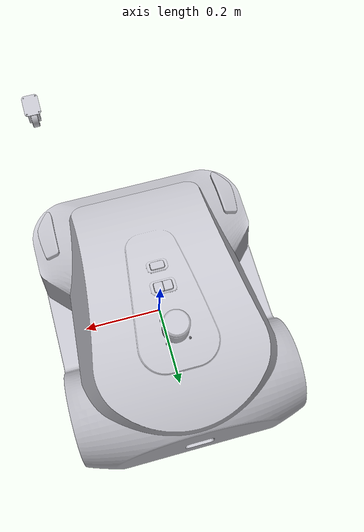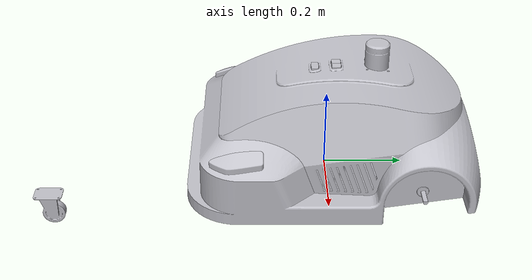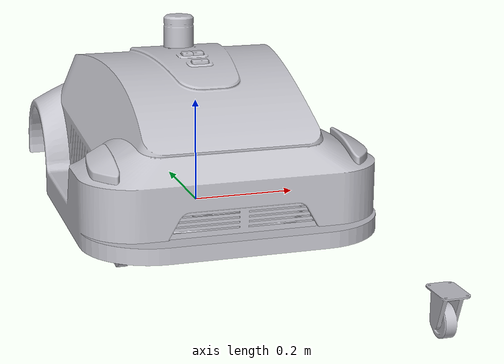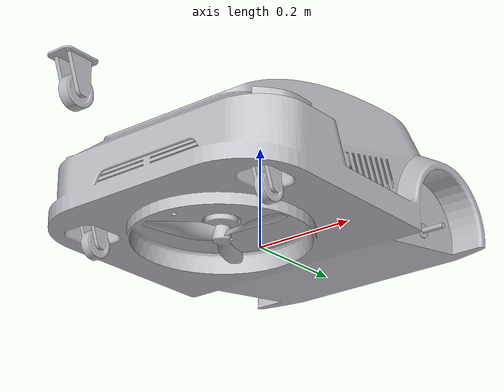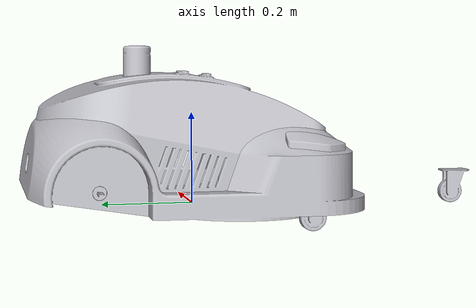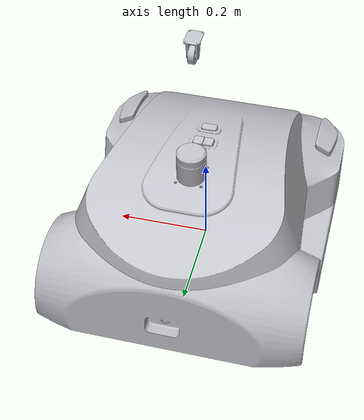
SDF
<sdf version='1.11'>
  <model name='Robotic'>
    <link name='base_link'>
      <inertial>
        <pose>5.2471218640196891e-06 0.02269667821484404 0.081583929946302952 0 0 0</pose>
        <mass>77.101537997187293</mass>
        <inertia>
          <ixx>3.551893067888106</ixx>
          <ixy>6.7883650591503441e-05</ixy>
          <ixz>-2.7827330177558539e-05</ixz>
          <iyy>1.948607803008116</iyy>
          <iyz>-0.16240465821616021</iyz>
          <izz>4.3501037351001948</izz>
        </inertia>
      </inertial>
      <collision name='base_link_collision'>
        <pose>0 0 0 0 0 0</pose>
        <geometry>
          <mesh>
            <scale>0.001 0.001 0.001</scale>
            <uri>file:///home/hafiz/ros2_ws/install/lawnmover/share/lawnmover/meshes/base_link.stl</uri>
          </mesh>
        </geometry>
        <surface>
          <contact>
            <ode/>
          </contact>
          <friction>
            <ode>
              <mu>0.20000000000000001</mu>
              <mu2>0.20000000000000001</mu2>
            </ode>
          </friction>
        </surface>
      </collision>
      <collision name='base_link_fixed_joint_lump__top_body_1_collision_1'>
        <pose>0 0 0 0 0 0</pose>
        <geometry>
          <mesh>
            <scale>0.001 0.001 0.001</scale>
            <uri>file:///home/hafiz/ros2_ws/install/lawnmover/share/lawnmover/meshes/top_body_1.stl</uri>
          </mesh>
        </geometry>
        <surface>
          <contact>
            <ode/>
          </contact>
          <friction>
            <ode>
              <mu>0.20000000000000001</mu>
              <mu2>0.20000000000000001</mu2>
            </ode>
          </friction>
        </surface>
      </collision>
      <collision name='base_link_fixed_joint_lump__LiDAR_1_collision_2'>
        <pose>0 -5.5511151231257827e-17 0 0 0 0</pose>
        <geometry>
          <mesh>
            <scale>0.001 0.001 0.001</scale>
            <uri>file:///home/hafiz/ros2_ws/install/lawnmover/share/lawnmover/meshes/LiDAR_1.stl</uri>
          </mesh>
        </geometry>
        <surface>
          <contact>
            <ode/>
          </contact>
          <friction>
            <ode>
              <mu>0.20000000000000001</mu>
              <mu2>0.20000000000000001</mu2>
            </ode>
          </friction>
        </surface>
      </collision>
      <collision name='base_link_fixed_joint_lump__electronic_board_cover_1_collision_3'>
        <pose>0 0 0 0 0 0</pose>
        <geometry>
          <mesh>
            <scale>0.001 0.001 0.001</scale>
            <uri>file:///home/hafiz/ros2_ws/install/lawnmover/share/lawnmover/meshes/electronic_board_cover_1.stl</uri>
          </mesh>
        </geometry>
        <surface>
          <contact>
            <ode/>
          </contact>
          <friction>
            <ode>
              <mu>0.20000000000000001</mu>
              <mu2>0.20000000000000001</mu2>
            </ode>
          </friction>
        </surface>
      </collision>
      <collision name='base_link_fixed_joint_lump__motherboard_1_collision_4'>
        <pose>0 0 0 0 0 0</pose>
        <geometry>
          <mesh>
            <scale>0.001 0.001 0.001</scale>
            <uri>file:///home/hafiz/ros2_ws/install/lawnmover/share/lawnmover/meshes/motherboard_1.stl</uri>
          </mesh>
        </geometry>
        <surface>
          <contact>
            <ode/>
          </contact>
          <friction>
            <ode>
              <mu>0.20000000000000001</mu>
              <mu2>0.20000000000000001</mu2>
            </ode>
          </friction>
        </surface>
      </collision>
      <collision name='base_link_fixed_joint_lump__imu_1_collision_5'>
        <pose>0 0 0 0 0 0</pose>
        <geometry>
          <mesh>
            <scale>0.001 0.001 0.001</scale>
            <uri>file:///home/hafiz/ros2_ws/install/lawnmover/share/lawnmover/meshes/imu_1.stl</uri>
          </mesh>
        </geometry>
        <surface>
          <contact>
            <ode/>
          </contact>
          <friction>
            <ode>
              <mu>0.20000000000000001</mu>
              <mu2>0.20000000000000001</mu2>
            </ode>
          </friction>
        </surface>
      </collision>
      <collision name='base_link_fixed_joint_lump__switch_button_1_collision_6'>
        <pose>0 -5.5511151231257827e-17 0 0 0 0</pose>
        <geometry>
          <mesh>
            <scale>0.001 0.001 0.001</scale>
            <uri>file:///home/hafiz/ros2_ws/install/lawnmover/share/lawnmover/meshes/switch_button_1.stl</uri>
          </mesh>
        </geometry>
        <surface>
          <contact>
            <ode/>
          </contact>
          <friction>
            <ode>
              <mu>0.20000000000000001</mu>
              <mu2>0.20000000000000001</mu2>
            </ode>
          </friction>
        </surface>
      </collision>
      <collision name='base_link_fixed_joint_lump__emergency_stop_button_1_collision_7'>
        <pose>0 0 0 0 0 0</pose>
        <geometry>
          <mesh>
            <scale>0.001 0.001 0.001</scale>
            <uri>file:///home/hafiz/ros2_ws/install/lawnmover/share/lawnmover/meshes/emergency_stop_button_1.stl</uri>
          </mesh>
        </geometry>
        <surface>
          <contact>
            <ode/>
          </contact>
          <friction>
            <ode>
              <mu>0.20000000000000001</mu>
              <mu2>0.20000000000000001</mu2>
            </ode>
          </friction>
        </surface>
      </collision>
      <collision name='base_link_fixed_joint_lump__rear_tyre_motor_2_collision_8'>
        <pose>0 0 0 0 0 0</pose>
        <geometry>
          <mesh>
            <scale>0.001 0.001 0.001</scale>
            <uri>file:///home/hafiz/ros2_ws/install/lawnmover/share/lawnmover/meshes/rear_tyre_motor_2.stl</uri>
          </mesh>
        </geometry>
        <surface>
          <contact>
            <ode/>
          </contact>
          <friction>
            <ode>
              <mu>0.20000000000000001</mu>
              <mu2>0.20000000000000001</mu2>
            </ode>
          </friction>
        </surface>
      </collision>
      <collision name='base_link_fixed_joint_lump__front_tyre_1_collision_9'>
        <pose>0 0 0 0 0 0</pose>
        <geometry>
          <mesh>
            <scale>0.001 0.001 0.001</scale>
            <uri>file:///home/hafiz/ros2_ws/install/lawnmover/share/lawnmover/meshes/front_tyre_1.stl</uri>
          </mesh>
        </geometry>
        <surface>
          <contact>
            <ode/>
          </contact>
          <friction>
            <ode>
              <mu>0.20000000000000001</mu>
              <mu2>0.20000000000000001</mu2>
            </ode>
          </friction>
        </surface>
      </collision>
      <collision name='base_link_fixed_joint_lump__front_tyre_2_collision_10'>
        <pose>0 0 0 0 0 0</pose>
        <geometry>
          <mesh>
            <scale>0.001 0.001 0.001</scale>
            <uri>file:///home/hafiz/ros2_ws/install/lawnmover/share/lawnmover/meshes/front_tyre_2.stl</uri>
          </mesh>
        </geometry>
        <surface>
          <contact>
            <ode/>
          </contact>
          <friction>
            <ode>
              <mu>0.20000000000000001</mu>
              <mu2>0.20000000000000001</mu2>
            </ode>
          </friction>
        </surface>
      </collision>
      <collision name='base_link_fixed_joint_lump__blade_motor_1_collision_11'>
        <pose>0 0 0 0 0 0</pose>
        <geometry>
          <mesh>
            <scale>0.001 0.001 0.001</scale>
            <uri>file:///home/hafiz/ros2_ws/install/lawnmover/share/lawnmover/meshes/blade_motor_1.stl</uri>
          </mesh>
        </geometry>
        <surface>
          <contact>
            <ode/>
          </contact>
          <friction>
            <ode>
              <mu>0.20000000000000001</mu>
              <mu2>0.20000000000000001</mu2>
            </ode>
          </friction>
        </surface>
      </collision>
      <collision name='base_link_fixed_joint_lump__odometer_1_collision_12'>
        <pose>0 0 0 0 0 0</pose>
        <geometry>
          <mesh>
            <scale>0.001 0.001 0.001</scale>
            <uri>file:///home/hafiz/ros2_ws/install/lawnmover/share/lawnmover/meshes/odometer_1.stl</uri>
          </mesh>
        </geometry>
        <surface>
          <contact>
            <ode/>
          </contact>
          <friction>
            <ode>
              <mu>0.20000000000000001</mu>
              <mu2>0.20000000000000001</mu2>
            </ode>
          </friction>
        </surface>
      </collision>
      <collision name='base_link_fixed_joint_lump__odometer_2_collision_13'>
        <pose>0 0 0 0 0 0</pose>
        <geometry>
          <mesh>
            <scale>0.001 0.001 0.001</scale>
            <uri>file:///home/hafiz/ros2_ws/install/lawnmover/share/lawnmover/meshes/odometer_2.stl</uri>
          </mesh>
        </geometry>
        <surface>
          <contact>
            <ode/>
          </contact>
          <friction>
            <ode>
              <mu>0.20000000000000001</mu>
              <mu2>0.20000000000000001</mu2>
            </ode>
          </friction>
        </surface>
      </collision>
      <collision name='base_link_fixed_joint_lump__odometer_cover_left_1_collision_14'>
        <pose>0 0 0 0 0 0</pose>
        <geometry>
          <mesh>
            <scale>0.001 0.001 0.001</scale>
            <uri>file:///home/hafiz/ros2_ws/install/lawnmover/share/lawnmover/meshes/odometer_cover_left_1.stl</uri>
          </mesh>
        </geometry>
        <surface>
          <contact>
            <ode/>
          </contact>
          <friction>
            <ode>
              <mu>0.20000000000000001</mu>
              <mu2>0.20000000000000001</mu2>
            </ode>
          </friction>
        </surface>
      </collision>
      <collision name='base_link_fixed_joint_lump__odometer_cover_right_1_collision_15'>
        <pose>0 0 0 0 0 0</pose>
        <geometry>
          <mesh>
            <scale>0.001 0.001 0.001</scale>
            <uri>file:///home/hafiz/ros2_ws/install/lawnmover/share/lawnmover/meshes/odometer_cover_right_1.stl</uri>
          </mesh>
        </geometry>
        <surface>
          <contact>
            <ode/>
          </contact>
          <friction>
            <ode>
              <mu>0.20000000000000001</mu>
              <mu2>0.20000000000000001</mu2>
            </ode>
          </friction>
        </surface>
      </collision>
      <collision name='base_link_fixed_joint_lump__battery_1_collision_16'>
        <pose>0 0 0 0 0 0</pose>
        <geometry>
          <mesh>
            <scale>0.001 0.001 0.001</scale>
            <uri>file:///home/hafiz/ros2_ws/install/lawnmover/share/lawnmover/meshes/battery_1.stl</uri>
          </mesh>
        </geometry>
        <surface>
          <contact>
            <ode/>
          </contact>
          <friction>
            <ode>
              <mu>0.20000000000000001</mu>
              <mu2>0.20000000000000001</mu2>
            </ode>
          </friction>
        </surface>
      </collision>
      <collision name='base_link_fixed_joint_lump__rear_tyre_motor_1_collision_17'>
        <pose>0 0 0 0 0 0</pose>
        <geometry>
          <mesh>
            <scale>0.001 0.001 0.001</scale>
            <uri>file:///home/hafiz/ros2_ws/install/lawnmover/share/lawnmover/meshes/rear_tyre_motor_1.stl</uri>
          </mesh>
        </geometry>
        <surface>
          <contact>
            <ode/>
          </contact>
          <friction>
            <ode>
              <mu>0.20000000000000001</mu>
              <mu2>0.20000000000000001</mu2>
            </ode>
          </friction>
        </surface>
      </collision>
      <visual name='base_link_visual'>
        <pose>0 0 0 0 0 0</pose>
        <geometry>
          <mesh>
            <scale>0.001 0.001 0.001</scale>
            <uri>file:///home/hafiz/ros2_ws/install/lawnmover/share/lawnmover/meshes/base_link.stl</uri>
          </mesh>
        </geometry>
        <material>
          <script>
            <name>Gazebo/Silver</name>
            <uri>file://media/materials/scripts/gazebo.material</uri>
          </script>
          <diffuse>0.875 0.875 0.875 1</diffuse>
          <ambient>0.875 0.875 0.875 1</ambient>
        </material>
      </visual>
      <visual name='base_link_fixed_joint_lump__top_body_1_visual_1'>
        <pose>0 0 0 0 0 0</pose>
        <geometry>
          <mesh>
            <scale>0.001 0.001 0.001</scale>
            <uri>file:///home/hafiz/ros2_ws/install/lawnmover/share/lawnmover/meshes/top_body_1.stl</uri>
          </mesh>
        </geometry>
        <material>
          <script>
            <name>Gazebo/Silver</name>
            <uri>file://media/materials/scripts/gazebo.material</uri>
          </script>
          <diffuse>0.875 0.875 0.875 1</diffuse>
          <ambient>0.875 0.875 0.875 1</ambient>
        </material>
      </visual>
      <visual name='base_link_fixed_joint_lump__LiDAR_1_visual_2'>
        <pose>0 -5.5511151231257827e-17 0 0 0 0</pose>
        <geometry>
          <mesh>
            <scale>0.001 0.001 0.001</scale>
            <uri>file:///home/hafiz/ros2_ws/install/lawnmover/share/lawnmover/meshes/LiDAR_1.stl</uri>
          </mesh>
        </geometry>
        <material>
          <script>
            <name>Gazebo/Silver</name>
            <uri>file://media/materials/scripts/gazebo.material</uri>
          </script>
          <diffuse>0.875 0.875 0.875 1</diffuse>
          <ambient>0.875 0.875 0.875 1</ambient>
        </material>
      </visual>
      <visual name='base_link_fixed_joint_lump__electronic_board_cover_1_visual_3'>
        <pose>0 0 0 0 0 0</pose>
        <geometry>
          <mesh>
            <scale>0.001 0.001 0.001</scale>
            <uri>file:///home/hafiz/ros2_ws/install/lawnmover/share/lawnmover/meshes/electronic_board_cover_1.stl</uri>
          </mesh>
        </geometry>
        <material>
          <script>
            <name>Gazebo/Silver</name>
            <uri>file://media/materials/scripts/gazebo.material</uri>
          </script>
          <diffuse>0.875 0.875 0.875 1</diffuse>
          <ambient>0.875 0.875 0.875 1</ambient>
        </material>
      </visual>
      <visual name='base_link_fixed_joint_lump__motherboard_1_visual_4'>
        <pose>0 0 0 0 0 0</pose>
        <geometry>
          <mesh>
            <scale>0.001 0.001 0.001</scale>
            <uri>file:///home/hafiz/ros2_ws/install/lawnmover/share/lawnmover/meshes/motherboard_1.stl</uri>
          </mesh>
        </geometry>
        <material>
          <script>
            <name>Gazebo/Silver</name>
            <uri>file://media/materials/scripts/gazebo.material</uri>
          </script>
          <diffuse>0.875 0.875 0.875 1</diffuse>
          <ambient>0.875 0.875 0.875 1</ambient>
        </material>
      </visual>
      <visual name='base_link_fixed_joint_lump__imu_1_visual_5'>
        <pose>0 0 0 0 0 0</pose>
        <geometry>
          <mesh>
            <scale>0.001 0.001 0.001</scale>
            <uri>file:///home/hafiz/ros2_ws/install/lawnmover/share/lawnmover/meshes/imu_1.stl</uri>
          </mesh>
        </geometry>
        <material>
          <script>
            <name>Gazebo/Silver</name>
            <uri>file://media/materials/scripts/gazebo.material</uri>
          </script>
          <diffuse>0.875 0.875 0.875 1</diffuse>
          <ambient>0.875 0.875 0.875 1</ambient>
        </material>
      </visual>
      <visual name='base_link_fixed_joint_lump__switch_button_1_visual_6'>
        <pose>0 -5.5511151231257827e-17 0 0 0 0</pose>
        <geometry>
          <mesh>
            <scale>0.001 0.001 0.001</scale>
            <uri>file:///home/hafiz/ros2_ws/install/lawnmover/share/lawnmover/meshes/switch_button_1.stl</uri>
          </mesh>
        </geometry>
        <material>
          <script>
            <name>Gazebo/Silver</name>
            <uri>file://media/materials/scripts/gazebo.material</uri>
          </script>
          <diffuse>0.875 0.875 0.875 1</diffuse>
          <ambient>0.875 0.875 0.875 1</ambient>
        </material>
      </visual>
      <visual name='base_link_fixed_joint_lump__emergency_stop_button_1_visual_7'>
        <pose>0 0 0 0 0 0</pose>
        <geometry>
          <mesh>
            <scale>0.001 0.001 0.001</scale>
            <uri>file:///home/hafiz/ros2_ws/install/lawnmover/share/lawnmover/meshes/emergency_stop_button_1.stl</uri>
          </mesh>
        </geometry>
        <material>
          <script>
            <name>Gazebo/Silver</name>
            <uri>file://media/materials/scripts/gazebo.material</uri>
          </script>
          <diffuse>0.875 0.875 0.875 1</diffuse>
          <ambient>0.875 0.875 0.875 1</ambient>
        </material>
      </visual>
      <visual name='base_link_fixed_joint_lump__rear_tyre_motor_2_visual_8'>
        <pose>0 0 0 0 0 0</pose>
        <geometry>
          <mesh>
            <scale>0.001 0.001 0.001</scale>
            <uri>file:///home/hafiz/ros2_ws/install/lawnmover/share/lawnmover/meshes/rear_tyre_motor_2.stl</uri>
          </mesh>
        </geometry>
        <material>
          <script>
            <name>Gazebo/Silver</name>
            <uri>file://media/materials/scripts/gazebo.material</uri>
          </script>
          <diffuse>0.875 0.875 0.875 1</diffuse>
          <ambient>0.875 0.875 0.875 1</ambient>
        </material>
      </visual>
      <visual name='base_link_fixed_joint_lump__front_tyre_1_visual_9'>
        <pose>0 0 0 0 0 0</pose>
        <geometry>
          <mesh>
            <scale>0.001 0.001 0.001</scale>
            <uri>file:///home/hafiz/ros2_ws/install/lawnmover/share/lawnmover/meshes/front_tyre_1.stl</uri>
          </mesh>
        </geometry>
        <material>
          <script>
            <name>Gazebo/Silver</name>
            <uri>file://media/materials/scripts/gazebo.material</uri>
          </script>
          <diffuse>0.875 0.875 0.875 1</diffuse>
          <ambient>0.875 0.875 0.875 1</ambient>
        </material>
      </visual>
      <visual name='base_link_fixed_joint_lump__front_tyre_2_visual_10'>
        <pose>0 0 0 0 0 0</pose>
        <geometry>
          <mesh>
            <scale>0.001 0.001 0.001</scale>
            <uri>file:///home/hafiz/ros2_ws/install/lawnmover/share/lawnmover/meshes/front_tyre_2.stl</uri>
          </mesh>
        </geometry>
        <material>
          <script>
            <name>Gazebo/Silver</name>
            <uri>file://media/materials/scripts/gazebo.material</uri>
          </script>
          <diffuse>0.875 0.875 0.875 1</diffuse>
          <ambient>0.875 0.875 0.875 1</ambient>
        </material>
      </visual>
      <visual name='base_link_fixed_joint_lump__blade_motor_1_visual_11'>
        <pose>0 0 0 0 0 0</pose>
        <geometry>
          <mesh>
            <scale>0.001 0.001 0.001</scale>
            <uri>file:///home/hafiz/ros2_ws/install/lawnmover/share/lawnmover/meshes/blade_motor_1.stl</uri>
          </mesh>
        </geometry>
        <material>
          <script>
            <name>Gazebo/Silver</name>
            <uri>file://media/materials/scripts/gazebo.material</uri>
          </script>
          <diffuse>0.875 0.875 0.875 1</diffuse>
          <ambient>0.875 0.875 0.875 1</ambient>
        </material>
      </visual>
      <visual name='base_link_fixed_joint_lump__odometer_1_visual_12'>
        <pose>0 0 0 0 0 0</pose>
        <geometry>
          <mesh>
            <scale>0.001 0.001 0.001</scale>
            <uri>file:///home/hafiz/ros2_ws/install/lawnmover/share/lawnmover/meshes/odometer_1.stl</uri>
          </mesh>
        </geometry>
        <material>
          <script>
            <name>Gazebo/Silver</name>
            <uri>file://media/materials/scripts/gazebo.material</uri>
          </script>
          <diffuse>0.875 0.875 0.875 1</diffuse>
          <ambient>0.875 0.875 0.875 1</ambient>
        </material>
      </visual>
      <visual name='base_link_fixed_joint_lump__odometer_2_visual_13'>
        <pose>0 0 0 0 0 0</pose>
        <geometry>
          <mesh>
            <scale>0.001 0.001 0.001</scale>
            <uri>file:///home/hafiz/ros2_ws/install/lawnmover/share/lawnmover/meshes/odometer_2.stl</uri>
          </mesh>
        </geometry>
        <material>
          <script>
            <name>Gazebo/Silver</name>
            <uri>file://media/materials/scripts/gazebo.material</uri>
          </script>
          <diffuse>0.875 0.875 0.875 1</diffuse>
          <ambient>0.875 0.875 0.875 1</ambient>
        </material>
      </visual>
      <visual name='base_link_fixed_joint_lump__odometer_cover_left_1_visual_14'>
        <pose>0 0 0 0 0 0</pose>
        <geometry>
          <mesh>
            <scale>0.001 0.001 0.001</scale>
            <uri>file:///home/hafiz/ros2_ws/install/lawnmover/share/lawnmover/meshes/odometer_cover_left_1.stl</uri>
          </mesh>
        </geometry>
        <material>
          <script>
            <name>Gazebo/Silver</name>
            <uri>file://media/materials/scripts/gazebo.material</uri>
          </script>
          <diffuse>0.875 0.875 0.875 1</diffuse>
          <ambient>0.875 0.875 0.875 1</ambient>
        </material>
      </visual>
      <visual name='base_link_fixed_joint_lump__odometer_cover_right_1_visual_15'>
        <pose>0 0 0 0 0 0</pose>
        <geometry>
          <mesh>
            <scale>0.001 0.001 0.001</scale>
            <uri>file:///home/hafiz/ros2_ws/install/lawnmover/share/lawnmover/meshes/odometer_cover_right_1.stl</uri>
          </mesh>
        </geometry>
        <material>
          <script>
            <name>Gazebo/Silver</name>
            <uri>file://media/materials/scripts/gazebo.material</uri>
          </script>
          <diffuse>0.875 0.875 0.875 1</diffuse>
          <ambient>0.875 0.875 0.875 1</ambient>
        </material>
      </visual>
      <visual name='base_link_fixed_joint_lump__battery_1_visual_16'>
        <pose>0 0 0 0 0 0</pose>
        <geometry>
          <mesh>
            <scale>0.001 0.001 0.001</scale>
            <uri>file:///home/hafiz/ros2_ws/install/lawnmover/share/lawnmover/meshes/battery_1.stl</uri>
          </mesh>
        </geometry>
        <material>
          <script>
            <name>Gazebo/Silver</name>
            <uri>file://media/materials/scripts/gazebo.material</uri>
          </script>
          <diffuse>0.875 0.875 0.875 1</diffuse>
          <ambient>0.875 0.875 0.875 1</ambient>
        </material>
      </visual>
      <visual name='base_link_fixed_joint_lump__rear_tyre_motor_1_visual_17'>
        <pose>0 0 0 0 0 0</pose>
        <geometry>
          <mesh>
            <scale>0.001 0.001 0.001</scale>
            <uri>file:///home/hafiz/ros2_ws/install/lawnmover/share/lawnmover/meshes/rear_tyre_motor_1.stl</uri>
          </mesh>
        </geometry>
        <material>
          <script>
            <name>Gazebo/Silver</name>
            <uri>file://media/materials/scripts/gazebo.material</uri>
          </script>
          <diffuse>0.875 0.875 0.875 1</diffuse>
          <ambient>0.875 0.875 0.875 1</ambient>
        </material>
      </visual>
      <self_collide>true</self_collide>
      <gravity>true</gravity>
      <self_collide>true</self_collide>
      <self_collide>true</self_collide>
      <self_collide>true</self_collide>
      <self_collide>true</self_collide>
      <self_collide>true</self_collide>
      <self_collide>true</self_collide>
      <self_collide>true</self_collide>
      <self_collide>true</self_collide>
      <self_collide>true</self_collide>
      <self_collide>true</self_collide>
      <self_collide>true</self_collide>
      <self_collide>true</self_collide>
      <self_collide>true</self_collide>
      <self_collide>true</self_collide>
      <self_collide>true</self_collide>
      <self_collide>true</self_collide>
      <self_collide>true</self_collide>
    </link>
    <joint name='rear_right_wheel_joint' type='revolute'>
      <pose relative_to='base_link'>0.21149999999999999 -0.224 0.050000000000000003 0 0 0</pose>
      <parent>base_link</parent>
      <child>rear_tyre_2</child>
      <axis>
        <xyz>1 0 0</xyz>
        <limit>
          <lower>-inf</lower>
          <upper>inf</upper>
        </limit>
        <dynamics>
          <spring_reference>0</spring_reference>
          <spring_stiffness>0</spring_stiffness>
        </dynamics>
      </axis>
    </joint>
    <link name='rear_tyre_2'>
      <pose relative_to='rear_right_wheel_joint'>0 0 0 0 0 0</pose>
      <inertial>
        <pose>-0.46372419849369889 -2.959092174070754e-08 -3.8041371927532994e-09 0 0 0</pose>
        <mass>9.4832681714900442</mass>
        <inertia>
          <ixx>0.038711000000000002</ixx>
          <ixy>0</ixy>
          <ixz>0</ixz>
          <iyy>0.021995000000000001</iyy>
          <iyz>0</iyz>
          <izz>0.021995000000000001</izz>
        </inertia>
      </inertial>
      <collision name='rear_tyre_2_collision'>
        <pose>-0.21149999999999999 -0.224 -0.050000000000000003 0 0 0</pose>
        <geometry>
          <mesh>
            <scale>0.001 0.001 0.001</scale>
            <uri>file:///home/hafiz/ros2_ws/install/lawnmover/share/lawnmover/meshes/rear_tyre_2.stl</uri>
          </mesh>
        </geometry>
        <surface>
          <contact>
            <ode/>
          </contact>
          <friction>
            <ode>
              <mu>0.20000000000000001</mu>
              <mu2>0.20000000000000001</mu2>
            </ode>
          </friction>
        </surface>
      </collision>
      <visual name='rear_tyre_2_visual'>
        <pose>-0.21149999999999999 -0.224 -0.050000000000000003 0 0 0</pose>
        <geometry>
          <mesh>
            <scale>0.001 0.001 0.001</scale>
            <uri>file:///home/hafiz/ros2_ws/install/lawnmover/share/lawnmover/meshes/rear_tyre_2.stl</uri>
          </mesh>
        </geometry>
        <material>
          <script>
            <name>Gazebo/Silver</name>
            <uri>file://media/materials/scripts/gazebo.material</uri>
          </script>
          <diffuse>0.875 0.875 0.875 1</diffuse>
          <ambient>0.875 0.875 0.875 1</ambient>
        </material>
      </visual>
      <self_collide>true</self_collide>
    </link>
    <joint name='blade_joint' type='revolute'>
      <pose relative_to='base_link'>0 -0.11 -0.012500000000000001 0 0 0</pose>
      <parent>base_link</parent>
      <child>blade_1</child>
      <axis>
        <xyz>0 0 1</xyz>
        <limit>
          <lower>-inf</lower>
          <upper>inf</upper>
        </limit>
        <dynamics>
          <spring_reference>0</spring_reference>
          <spring_stiffness>0</spring_stiffness>
        </dynamics>
      </axis>
    </joint>
    <link name='blade_1'>
      <pose relative_to='blade_joint'>0 0 0 0 0 0</pose>
      <inertial>
        <pose>-3.6913231454531113e-08 1.1276890937717e-07 0.003657443732957504 0 0 0</pose>
        <mass>0.80892492166650143</mass>
        <inertia>
          <ixx>0.0022550000000000001</ixx>
          <ixy>0</ixy>
          <ixz>0</ixz>
          <iyy>0.0022550000000000001</iyy>
          <iyz>0</iyz>
          <izz>0.0044739999999999997</izz>
        </inertia>
      </inertial>
      <collision name='blade_1_collision'>
        <pose>0 0.11 0.012500000000000001 0 0 0</pose>
        <geometry>
          <mesh>
            <scale>0.001 0.001 0.001</scale>
            <uri>file:///home/hafiz/ros2_ws/install/lawnmover/share/lawnmover/meshes/blade_1.stl</uri>
          </mesh>
        </geometry>
        <surface>
          <contact>
            <ode/>
          </contact>
          <friction>
            <ode>
              <mu>0.20000000000000001</mu>
              <mu2>0.20000000000000001</mu2>
            </ode>
          </friction>
        </surface>
      </collision>
      <visual name='blade_1_visual'>
        <pose>0 0.11 0.012500000000000001 0 0 0</pose>
        <geometry>
          <mesh>
            <scale>0.001 0.001 0.001</scale>
            <uri>file:///home/hafiz/ros2_ws/install/lawnmover/share/lawnmover/meshes/blade_1.stl</uri>
          </mesh>
        </geometry>
        <material>
          <script>
            <name>Gazebo/Silver</name>
            <uri>file://media/materials/scripts/gazebo.material</uri>
          </script>
          <diffuse>0.875 0.875 0.875 1</diffuse>
          <ambient>0.875 0.875 0.875 1</ambient>
        </material>
      </visual>
      <self_collide>true</self_collide>
    </link>
    <joint name='rear_left_wheel_joint' type='revolute'>
      <pose relative_to='base_link'>0.21149999999999999 0.224 0.050000000000000003 0 0 0</pose>
      <parent>base_link</parent>
      <child>rear_tyre_1</child>
      <axis>
        <xyz>1 0 0</xyz>
        <limit>
          <lower>-inf</lower>
          <upper>inf</upper>
        </limit>
        <dynamics>
          <spring_reference>0</spring_reference>
          <spring_stiffness>0</spring_stiffness>
        </dynamics>
      </axis>
    </joint>
    <link name='rear_tyre_1'>
      <pose relative_to='rear_left_wheel_joint'>0 0 0 0 0 0</pose>
      <inertial>
        <pose>0.040724198493698932 2.931116702131753e-08 5.5632352821688444e-09 0 0 0</pose>
        <mass>9.4832681714900442</mass>
        <inertia>
          <ixx>0.038711000000000002</ixx>
          <ixy>0</ixy>
          <ixz>0</ixz>
          <iyy>0.021995000000000001</iyy>
          <iyz>0</iyz>
          <izz>0.021995000000000001</izz>
        </inertia>
      </inertial>
      <collision name='rear_tyre_1_collision'>
        <pose>-0.21149999999999999 -0.224 -0.050000000000000003 0 0 0</pose>
        <geometry>
          <mesh>
            <scale>0.001 0.001 0.001</scale>
            <uri>file:///home/hafiz/ros2_ws/install/lawnmover/share/lawnmover/meshes/rear_tyre_1.stl</uri>
          </mesh>
        </geometry>
        <surface>
          <contact>
            <ode/>
          </contact>
          <friction>
            <ode>
              <mu>0.20000000000000001</mu>
              <mu2>0.20000000000000001</mu2>
            </ode>
          </friction>
        </surface>
      </collision>
      <visual name='rear_tyre_1_visual'>
        <pose>-0.21149999999999999 -0.224 -0.050000000000000003 0 0 0</pose>
        <geometry>
          <mesh>
            <scale>0.001 0.001 0.001</scale>
            <uri>file:///home/hafiz/ros2_ws/install/lawnmover/share/lawnmover/meshes/rear_tyre_1.stl</uri>
          </mesh>
        </geometry>
        <material>
          <script>
            <name>Gazebo/Silver</name>
            <uri>file://media/materials/scripts/gazebo.material</uri>
          </script>
          <diffuse>0.875 0.875 0.875 1</diffuse>
          <ambient>0.875 0.875 0.875 1</ambient>
        </material>
      </visual>
      <self_collide>true</self_collide>
    </link>
    <plugin name='gz_ros2_control::GazeboSimROS2ControlPlugin' filename='gz_ros2_control-system'>
      <parameters>/home/hafiz/ros2_ws/src/lawnmover/config/controllers.yaml</parameters>
    </plugin>
	<plugin filename="gz-sim-diff-drive-system"
        name="gz::sim::systems::DiffDrive">

  	<left_joint>rear_left_wheel_joint</left_joint>

  	<right_joint>rear_right_wheel_joint</right_joint>

 	 <wheel_separation>0.448</wheel_separation>

 	 <wheel_radius>0.05</wheel_radius>

  	<topic>/cmd_vel</topic>

</plugin>
    <frame name='Rigid 21' attached_to='top_body_1'>
      <pose>0.043654999999999999 0.36049999999999999 0.10425 0 0 0</pose>
    </frame>
    <frame name='LiDAR_1' attached_to='Rigid 21'>
      <pose>0 0 0 0 0 0</pose>
    </frame>
    <frame name='Rigid 2' attached_to='electronic_board_cover_1'>
      <pose>0.00015100000000000001 -0.168271 0.0030000000000000001 0 0 0</pose>
    </frame>
    <frame name='motherboard_1' attached_to='Rigid 2'>
      <pose>0 0 0 0 0 0</pose>
    </frame>
    <frame name='Rigid 3' attached_to='electronic_board_cover_1'>
      <pose>0 -0.0040000000000000001 0.0030000000000000001 0 0 0</pose>
    </frame>
    <frame name='imu_1' attached_to='Rigid 3'>
      <pose>0 0 0 0 0 0</pose>
    </frame>
    <frame name='Rigid 4' attached_to='top_body_1'>
      <pose>0.017655000000000001 0.47604400000000002 0.028719000000000001 0 0 0</pose>
    </frame>
    <frame name='electronic_board_cover_1' attached_to='Rigid 4'>
      <pose>0 0 0 0 0 0</pose>
    </frame>
    <frame name='Rigid 6' attached_to='top_body_1'>
      <pose>0.017655000000000001 0.29899999999999999 0.10425 0 0 0</pose>
    </frame>
    <frame name='switch_button_1' attached_to='Rigid 6'>
      <pose>0 0 0 0 0 0</pose>
    </frame>
    <frame name='Rigid 7' attached_to='top_body_1'>
      <pose>0.017655000000000001 0.24399999999999999 0.10425 0 0 0</pose>
    </frame>
    <frame name='emergency_stop_button_1' attached_to='Rigid 7'>
      <pose>0 0 0 0 0 0</pose>
    </frame>
    <frame name='Rigid 1' attached_to='base_link'>
      <pose>-0.017655000000000001 -0.26650000000000001 0.16628100000000001 0 0 0</pose>
    </frame>
    <frame name='top_body_1' attached_to='Rigid 1'>
      <pose>0 0 0 0 0 0</pose>
    </frame>
    <frame name='Rigid 10' attached_to='base_link'>
      <pose>-0.1275 0.26760600000000001 0.030485000000000002 0 0 0</pose>
    </frame>
    <frame name='rear_tyre_motor_2' attached_to='Rigid 10'>
      <pose>0 0 0 0 0 0</pose>
    </frame>
    <frame name='Rigid 13' attached_to='base_link'>
      <pose>0.20250000000000001 -0.23400000000000001 0.040000000000000001 0 0 0</pose>
    </frame>
    <frame name='front_tyre_1' attached_to='Rigid 13'>
      <pose>0 0 0 0 0 0</pose>
    </frame>
    <frame name='Rigid 14' attached_to='base_link'>
      <pose>-0.20250000000000001 -0.23400000000000001 0.040000000000000001 0 0 0</pose>
    </frame>
    <frame name='front_tyre_2' attached_to='Rigid 14'>
      <pose>0 0 0 0 0 0</pose>
    </frame>
    <frame name='Rigid 15' attached_to='base_link'>
      <pose>-0.044999999999999998 -0.032058000000000003 0.024500000000000001 0 0 0</pose>
    </frame>
    <frame name='blade_motor_1' attached_to='Rigid 15'>
      <pose>0 0 0 0 0 0</pose>
    </frame>
    <frame name='Rigid 17' attached_to='base_link'>
      <pose>0.22795099999999999 -0.24648600000000001 0.13 0 0 0</pose>
    </frame>
    <frame name='odometer_1' attached_to='Rigid 17'>
      <pose>0 0 0 0 0 0</pose>
    </frame>
    <frame name='Rigid 18' attached_to='base_link'>
      <pose>-0.24588599999999999 -0.24495800000000001 0.13 0 0 0</pose>
    </frame>
    <frame name='odometer_2' attached_to='Rigid 18'>
      <pose>0 0 0 0 0 0</pose>
    </frame>
    <frame name='Rigid 19' attached_to='base_link'>
      <pose>0.230379 -0.16400000000000001 0.13500000000000001 0 0 0</pose>
    </frame>
    <frame name='odometer_cover_left_1' attached_to='Rigid 19'>
      <pose>0 0 0 0 0 0</pose>
    </frame>
    <frame name='Rigid 20' attached_to='base_link'>
      <pose>-0.230379 -0.16400000000000001 0.13500000000000001 0 0 0</pose>
    </frame>
    <frame name='odometer_cover_right_1' attached_to='Rigid 20'>
      <pose>0 0 0 0 0 0</pose>
    </frame>
    <frame name='Rigid 8' attached_to='base_link'>
      <pose>0 0.27911599999999998 0.032315000000000003 0 0 0</pose>
    </frame>
    <frame name='battery_1' attached_to='Rigid 8'>
      <pose>0 0 0 0 0 0</pose>
    </frame>
    <frame name='Rigid 9' attached_to='base_link'>
      <pose>0.1275 0.18859899999999999 0.017919999999999998 0 0 0</pose>
    </frame>
    <frame name='rear_tyre_motor_1' attached_to='Rigid 9'>
      <pose>0 0 0 0 0 0</pose>
    </frame>
  </model>
</sdf>
